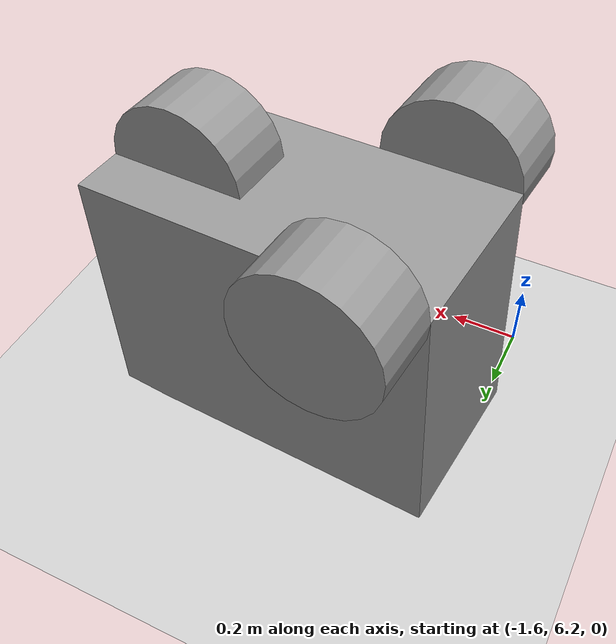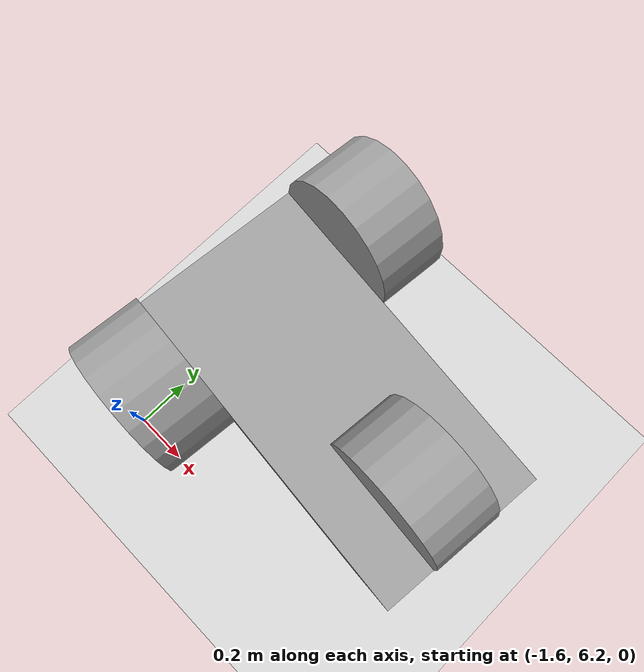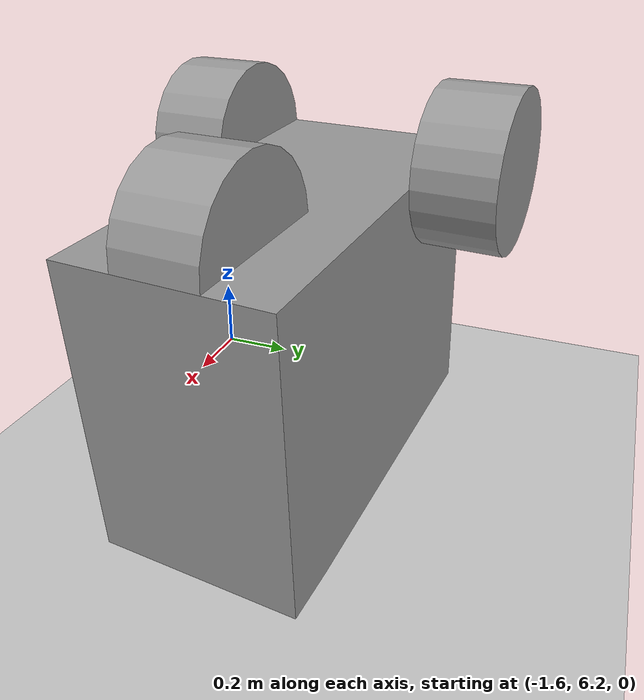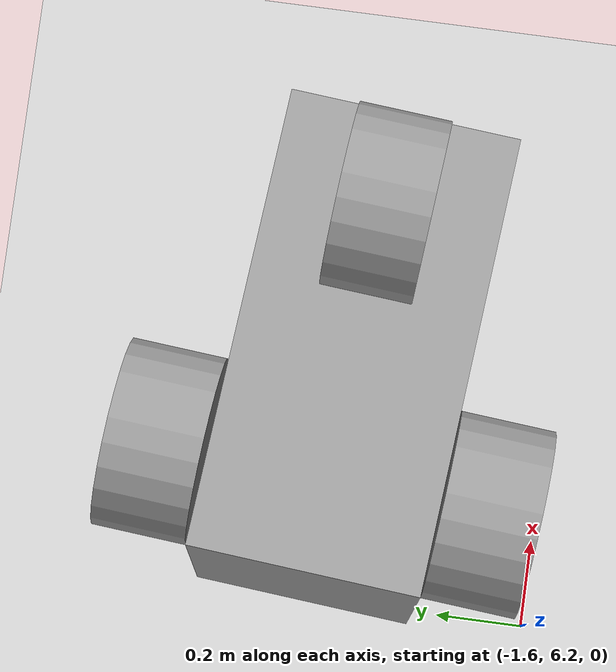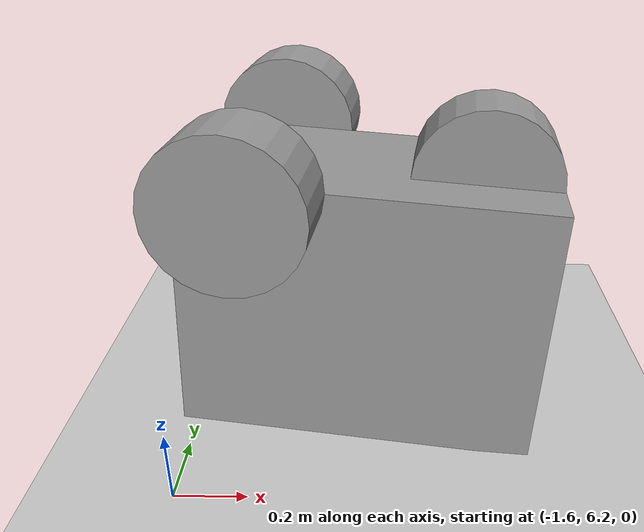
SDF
<sdf version="1.6">
 <world name="default">
  <model name="ground_plane">
   <static>1</static>
   <link name="link">
    <collision name="collision">
     <geometry><plane><normal>0 0 1</normal><size>100 100</size></plane></geometry>
     <surface><friction><ode><mu>100</mu><mu2>50</mu2></ode></friction></surface>
    </collision>
    <visual name="visual">
     <cast_shadows>0</cast_shadows>
     <geometry><plane><normal>0 0 1</normal><size>100 100</size></plane></geometry>
     <material>
      <script><uri>file://media/materials/scripts/gazebo.material</uri><name>Gazebo/Grey</name></script>
     </material>
    </visual>
   </link>
  </model>
  <model name="robocar1">
   <link name="front_wheel">
    <pose>-0.3 4 0.2 1.5708 -0 0</pose>
    <inertial>
     <mass>1</mass>
     <inertia><ixx>0.145833</ixx><ixy>0</ixy><ixz>0</ixz><iyy>0.145833</iyy><iyz>0</iyz><izz>0.125</izz></inertia>
     <pose>0 0 0 1.5708 -0 0</pose>
    </inertial>
    <visual name="visual">
     <pose>0 0 0 0 -0 1.5708</pose>
     <geometry><cylinder><radius>0.2</radius><length>0.2</length></cylinder></geometry>
     <material>
      <lighting>1</lighting>
      <script><uri>file://media/materials/scripts/gazebo.material</uri><name>Gazebo/Grey</name></script>
      <shader type="pixel"><normal_map>__default__</normal_map></shader>
      <ambient>0.3 0.3 0.3 1</ambient>
      <diffuse>0.7 0.7 0.7 1</diffuse>
      <specular>0.01 0.01 0.01 1</specular>
      <emissive>0 0 0 1</emissive>
     </material>
    </visual>
    <collision name="collision">
     <geometry><cylinder><radius>0.2</radius><length>0.2</length></cylinder></geometry>
     <surface>
      <friction>
       <ode><mu>1</mu><mu2>1</mu2><fdir1>0 0 0</fdir1><slip1>0</slip1><slip2>0</slip2></ode>
       <torsional>
        <coefficient>1</coefficient>
        <patch_radius>0</patch_radius>
        <surface_radius>0</surface_radius>
        <use_patch_radius>1</use_patch_radius>
        <ode><slip>0</slip></ode>
       </torsional>
      </friction>
      <bounce><restitution_coefficient>0</restitution_coefficient><threshold>1e+06</threshold></bounce>
      <contact>
       <collide_without_contact>0</collide_without_contact>
       <collide_without_contact_bitmask>1</collide_without_contact_bitmask>
       <collide_bitmask>1</collide_bitmask>
       <ode>
        <soft_cfm>0</soft_cfm>
        <soft_erp>0.2</soft_erp>
        <kp>1e+13</kp>
        <kd>1</kd>
        <max_vel>0.01</max_vel>
        <min_depth>0</min_depth>
       </ode>
       <bullet>
        <split_impulse>1</split_impulse>
        <split_impulse_penetration_threshold>-0.01</split_impulse_penetration_threshold>
        <soft_cfm>0</soft_cfm>
        <soft_erp>0.2</soft_erp>
        <kp>1e+13</kp>
        <kd>1</kd>
       </bullet>
      </contact>
     </surface>
    </collision>
   </link>
   <link name="body">
    <pose>0 4 0.575 0 -0 0</pose>
    <inertial>
     <mass>1</mass>
     <inertia>
      <ixx>0.166667</ixx>
      <ixy>0</ixy>
      <ixz>0</ixz>
      <iyy>0.166667</iyy>
      <iyz>0</iyz>
      <izz>0.166667</izz>
     </inertia>
    </inertial>
    <visual name="visual">
     <geometry><box><size>1 0.5 0.75</size></box></geometry>
     <material>
      <lighting>1</lighting>
      <script><uri>file://media/materials/scripts/gazebo.material</uri><name>Gazebo/Grey</name></script>
      <shader type="pixel"><normal_map>__default__</normal_map></shader>
      <ambient>0.3 0.3 0.3 1</ambient>
      <diffuse>0.7 0.7 0.7 1</diffuse>
      <specular>0.01 0.01 0.01 1</specular>
      <emissive>0 0 0 1</emissive>
     </material>
    </visual>
    <collision name="collision">
     <geometry><box><size>1 0.5 0.75</size></box></geometry>
     <surface>
      <friction>
       <ode><mu>1</mu><mu2>1</mu2><fdir1>0 0 0</fdir1><slip1>0</slip1><slip2>0</slip2></ode>
       <torsional>
        <coefficient>1</coefficient>
        <patch_radius>0</patch_radius>
        <surface_radius>0</surface_radius>
        <use_patch_radius>1</use_patch_radius>
        <ode><slip>0</slip></ode>
       </torsional>
      </friction>
      <bounce><restitution_coefficient>0</restitution_coefficient><threshold>1e+06</threshold></bounce>
      <contact>
       <collide_without_contact>0</collide_without_contact>
       <collide_without_contact_bitmask>1</collide_without_contact_bitmask>
       <collide_bitmask>1</collide_bitmask>
       <ode>
        <soft_cfm>0</soft_cfm>
        <soft_erp>0.2</soft_erp>
        <kp>1e+13</kp>
        <kd>1</kd>
        <max_vel>0.01</max_vel>
        <min_depth>0</min_depth>
       </ode>
       <bullet>
        <split_impulse>1</split_impulse>
        <split_impulse_penetration_threshold>-0.01</split_impulse_penetration_threshold>
        <soft_cfm>0</soft_cfm>
        <soft_erp>0.2</soft_erp>
        <kp>1e+13</kp>
        <kd>1</kd>
       </bullet>
      </contact>
     </surface>
    </collision>
   </link>
   <link name="left_wheel">
    <pose>0.3 4.35 0.2 1.5708 -0 0</pose>
    <inertial>
     <mass>1</mass>
     <inertia><ixx>0.145833</ixx><ixy>0</ixy><ixz>0</ixz><iyy>0.145833</iyy><iyz>0</iyz><izz>0.125</izz></inertia>
     <pose>0 0 0 1.5708 -0 0</pose>
    </inertial>
    <visual name="visual">
     <pose>0 0 0 0 -0 1.5708</pose>
     <geometry><cylinder><radius>0.2</radius><length>0.2</length></cylinder></geometry>
     <material>
      <lighting>1</lighting>
      <script><uri>file://media/materials/scripts/gazebo.material</uri><name>Gazebo/Grey</name></script>
      <shader type="pixel"><normal_map>__default__</normal_map></shader>
      <ambient>0.3 0.3 0.3 1</ambient>
      <diffuse>0.7 0.7 0.7 1</diffuse>
      <specular>0.01 0.01 0.01 1</specular>
      <emissive>0 0 0 1</emissive>
     </material>
    </visual>
    <collision name="collision">
     <geometry><cylinder><radius>0.2</radius><length>0.2</length></cylinder></geometry>
     <surface>
      <friction>
       <ode><mu>1</mu><mu2>1</mu2><fdir1>0 0 0</fdir1><slip1>0</slip1><slip2>0</slip2></ode>
       <torsional>
        <coefficient>1</coefficient>
        <patch_radius>0</patch_radius>
        <surface_radius>0</surface_radius>
        <use_patch_radius>1</use_patch_radius>
        <ode><slip>0</slip></ode>
       </torsional>
      </friction>
      <bounce><restitution_coefficient>0</restitution_coefficient><threshold>1e+06</threshold></bounce>
      <contact>
       <collide_without_contact>0</collide_without_contact>
       <collide_without_contact_bitmask>1</collide_without_contact_bitmask>
       <collide_bitmask>1</collide_bitmask>
       <ode>
        <soft_cfm>0</soft_cfm>
        <soft_erp>0.2</soft_erp>
        <kp>1e+13</kp>
        <kd>1</kd>
        <max_vel>0.01</max_vel>
        <min_depth>0</min_depth>
       </ode>
       <bullet>
        <split_impulse>1</split_impulse>
        <split_impulse_penetration_threshold>-0.01</split_impulse_penetration_threshold>
        <soft_cfm>0</soft_cfm>
        <soft_erp>0.2</soft_erp>
        <kp>1e+13</kp>
        <kd>1</kd>
       </bullet>
      </contact>
     </surface>
    </collision>
   </link>
   <link name="right_wheel">
    <pose>0.3 3.65 0.2 1.5708 -0 0</pose>
    <inertial>
     <mass>1</mass>
     <inertia><ixx>0.145833</ixx><ixy>0</ixy><ixz>0</ixz><iyy>0.145833</iyy><iyz>0</iyz><izz>0.125</izz></inertia>
     <pose>0 0 0 1.5708 -0 0</pose>
    </inertial>
    <visual name="visual">
     <pose>0 0 0 0 -0 1.5708</pose>
     <geometry><cylinder><radius>0.2</radius><length>0.2</length></cylinder></geometry>
     <material>
      <lighting>1</lighting>
      <script><uri>file://media/materials/scripts/gazebo.material</uri><name>Gazebo/Grey</name></script>
      <shader type="pixel"><normal_map>__default__</normal_map></shader>
      <ambient>0.3 0.3 0.3 1</ambient>
      <diffuse>0.7 0.7 0.7 1</diffuse>
      <specular>0.01 0.01 0.01 1</specular>
      <emissive>0 0 0 1</emissive>
     </material>
    </visual>
    <collision name="collision">
     <geometry><cylinder><radius>0.2</radius><length>0.2</length></cylinder></geometry>
     <surface>
      <friction>
       <ode><mu>1</mu><mu2>1</mu2><fdir1>0 0 0</fdir1><slip1>0</slip1><slip2>0</slip2></ode>
       <torsional>
        <coefficient>1</coefficient>
        <patch_radius>0</patch_radius>
        <surface_radius>0</surface_radius>
        <use_patch_radius>1</use_patch_radius>
        <ode><slip>0</slip></ode>
       </torsional>
      </friction>
      <bounce><restitution_coefficient>0</restitution_coefficient><threshold>1e+06</threshold></bounce>
      <contact>
       <collide_without_contact>0</collide_without_contact>
       <collide_without_contact_bitmask>1</collide_without_contact_bitmask>
       <collide_bitmask>1</collide_bitmask>
       <ode>
        <soft_cfm>0</soft_cfm>
        <soft_erp>0.2</soft_erp>
        <kp>1e+13</kp>
        <kd>1</kd>
        <max_vel>0.01</max_vel>
        <min_depth>0</min_depth>
       </ode>
       <bullet>
        <split_impulse>1</split_impulse>
        <split_impulse_penetration_threshold>-0.01</split_impulse_penetration_threshold>
        <soft_cfm>0</soft_cfm>
        <soft_erp>0.2</soft_erp>
        <kp>1e+13</kp>
        <kd>1</kd>
       </bullet>
      </contact>
     </surface>
    </collision>
   </link>
   <joint name="front_wheel_joint" type="revolute">
    <parent>body</parent>
    <child>front_wheel</child>
    <axis>
     <xyz>0 0 1</xyz>
     <use_parent_model_frame>0</use_parent_model_frame>
     <limit>
      <lower>-1.79769e+308</lower>
      <upper>1.79769e+308</upper>
      <effort>-1</effort>
      <velocity>-1</velocity>
     </limit>
     <dynamics>
      <spring_reference>0</spring_reference>
      <spring_stiffness>0</spring_stiffness>
      <damping>0</damping>
      <friction>0</friction>
     </dynamics>
    </axis>
    <physics>
     <ode><limit><cfm>0</cfm><erp>0.2</erp></limit><suspension><cfm>0</cfm><erp>0.2</erp></suspension></ode>
    </physics>
   </joint>
   <joint name="left_wheel_joint" type="revolute">
    <parent>body</parent>
    <child>left_wheel</child>
    <axis>
     <xyz>0 0 1</xyz>
     <use_parent_model_frame>0</use_parent_model_frame>
     <limit>
      <lower>-1.79769e+308</lower>
      <upper>1.79769e+308</upper>
      <effort>-1</effort>
      <velocity>-1</velocity>
     </limit>
     <dynamics>
      <spring_reference>0</spring_reference>
      <spring_stiffness>0</spring_stiffness>
      <damping>0</damping>
      <friction>0</friction>
     </dynamics>
    </axis>
    <physics>
     <ode><limit><cfm>0</cfm><erp>0.2</erp></limit><suspension><cfm>0</cfm><erp>0.2</erp></suspension></ode>
    </physics>
   </joint>
   <joint name="right_wheel_joint" type="revolute">
    <parent>body</parent>
    <child>right_wheel</child>
    <axis>
     <xyz>0 0 1</xyz>
     <use_parent_model_frame>0</use_parent_model_frame>
     <limit>
      <lower>-1.79769e+308</lower>
      <upper>1.79769e+308</upper>
      <effort>-1</effort>
      <velocity>-1</velocity>
     </limit>
     <dynamics>
      <spring_reference>0</spring_reference>
      <spring_stiffness>0</spring_stiffness>
      <damping>0</damping>
      <friction>0</friction>
     </dynamics>
    </axis>
    <physics>
     <ode><limit><cfm>0</cfm><erp>0.2</erp></limit><suspension><cfm>0</cfm><erp>0.2</erp></suspension></ode>
    </physics>
   </joint>
   <static>0</static>
   <pose>-1.42424 2.68424 0.965286 3.14159 -0.051894 3.05085</pose>
  </model>
 </world>
</sdf>
